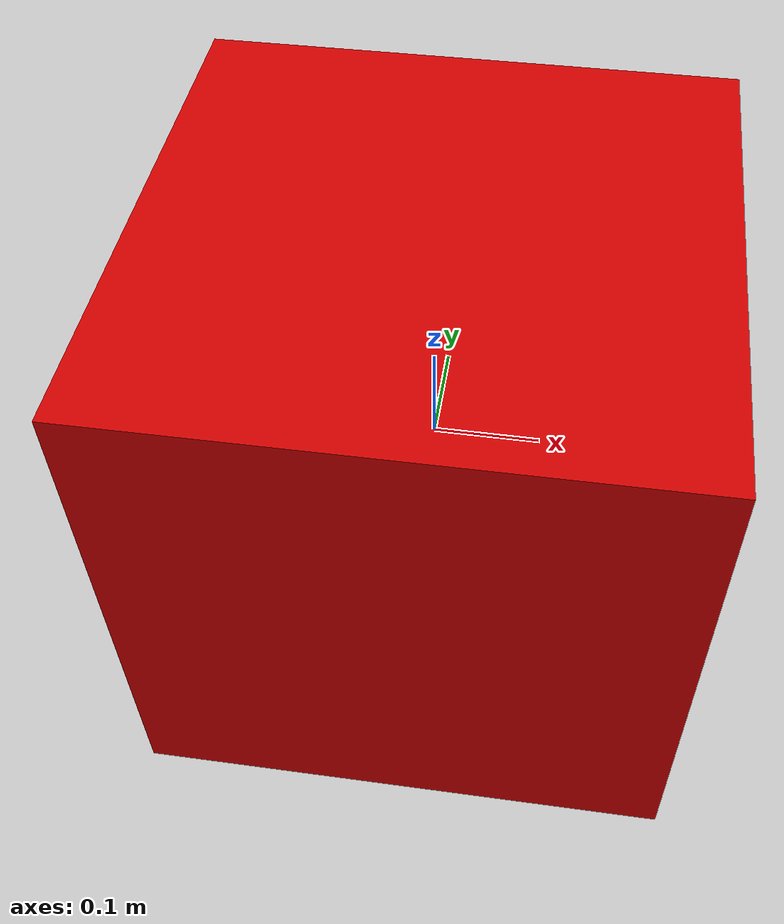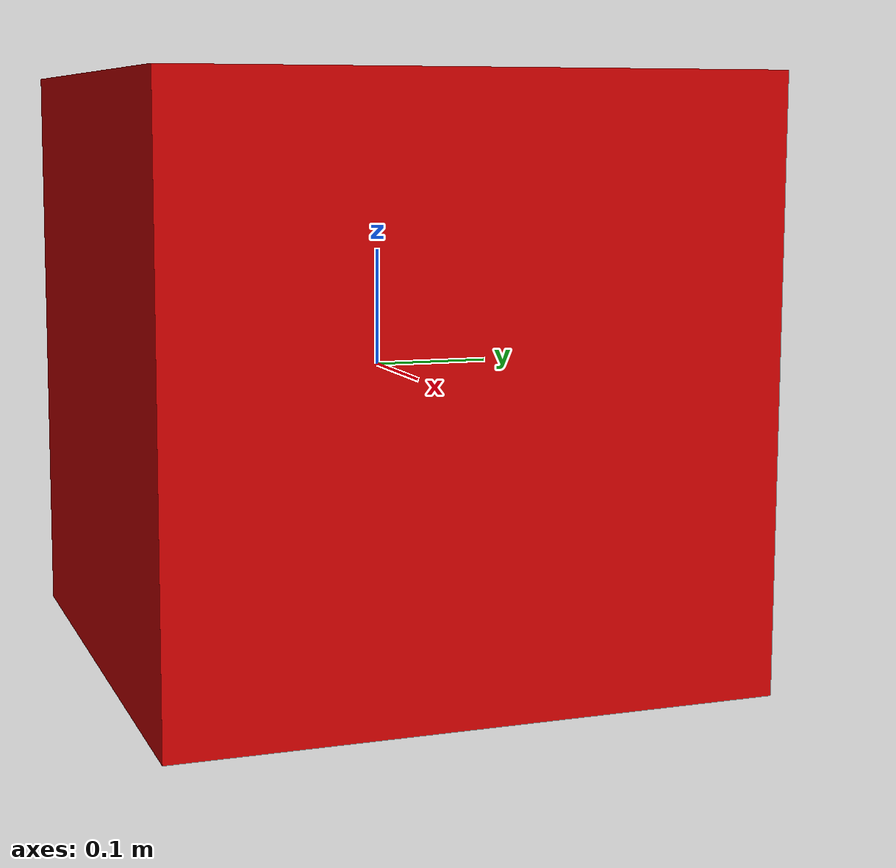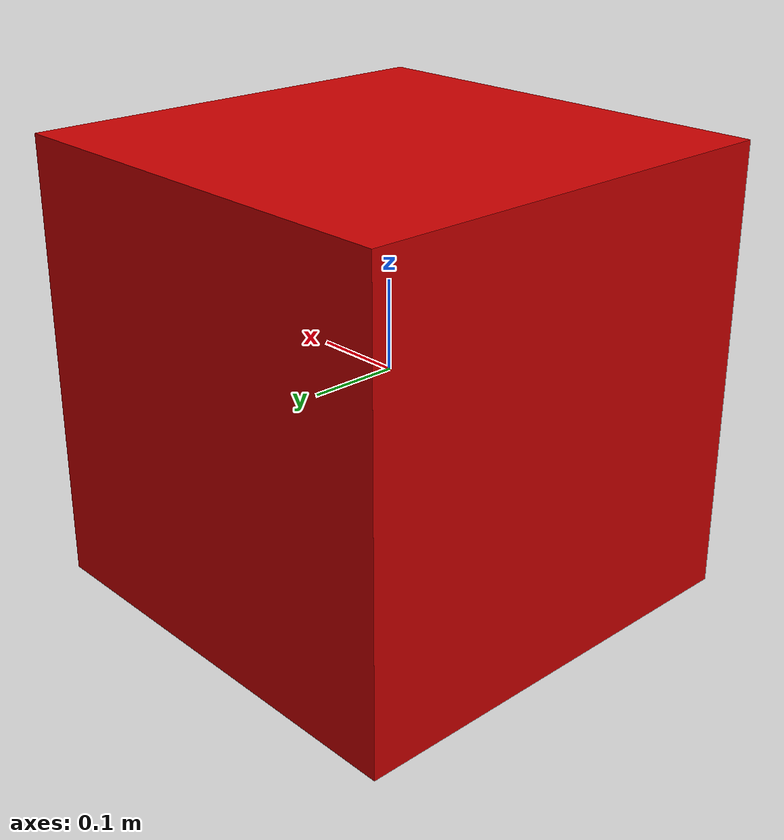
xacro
<?xml version="1.0"?>
<robot name="robot_with_includes" xmlns:xacro="http://www.ros.org/wiki/xacro">

  <!-- Include common properties from another file -->
  <xacro:include filename="common_properties.xacro"/>

  <!-- Local properties -->
  <xacro:property name="box_size" value="0.5"/>

  <!-- Use properties from the included file -->
  <link name="base_link">
    <visual>
      <geometry>
        <box size="${box_size} ${box_size} ${box_size}"/>
      </geometry>
      <material name="base_material">
        <!-- Hover over ${red} - it's defined in common_properties.xacro -->
        <color rgba="${red}"/>
      </material>
    </visual>
  </link>

  <link name="wheel">
    <visual>
      <geometry>
        <!-- Hover over ${wheel_radius} - it's defined in common_properties.xacro -->
        <cylinder radius="${wheel_radius}" length="${wheel_width}"/>
      </geometry>
      <material name="wheel_material">
        <!-- Hover over ${black} - it's defined in common_properties.xacro -->
        <color rgba="${black}"/>
      </material>
    </visual>
    <collision>
      <geometry>
        <cylinder radius="${wheel_radius}" length="${wheel_width}"/>
      </geometry>
    </collision>
    <inertial>
      <mass value="0.5"/>
      <inertia ixx="0.001" ixy="0.0" ixz="0.0" iyy="0.001" iyz="0.0" izz="0.001"/>
    </inertial>
  </link>

  <joint name="wheel_joint" type="continuous">
    <parent link="base_link"/>
    <child link="wheel"/>
    <!-- Use properties in expressions -->
    <origin xyz="0 0 ${-chassis_height/2}" rpy="0 0 0"/>
    <axis xyz="0 1 0"/>
  </joint>

</robot>

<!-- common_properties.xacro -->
<robot name="common_properties" xmlns:xacro="http://www.ros.org/wiki/xacro">

  <!-- Common color definitions -->
  <xacro:property name="red" value="0.8 0.0 0.0 1.0"/>
  <xacro:property name="green" value="0.0 0.8 0.0 1.0"/>
  <xacro:property name="blue" value="0.0 0.0 0.8 1.0"/>
  <xacro:property name="white" value="1.0 1.0 1.0 1.0"/>
  <xacro:property name="black" value="0.0 0.0 0.0 1.0"/>

  <!-- Common dimensions -->
  <xacro:property name="wheel_radius" value="0.1"/>
  <xacro:property name="wheel_width" value="0.05"/>
  <xacro:property name="chassis_height" value="0.2"/>

</robot>
